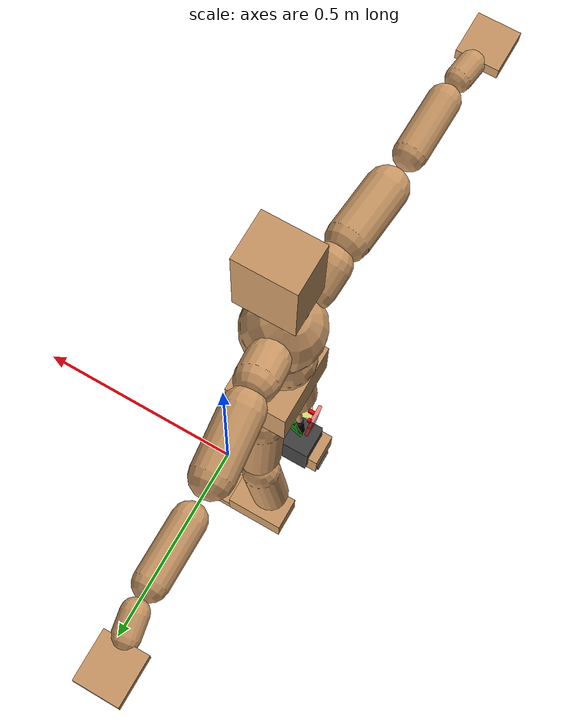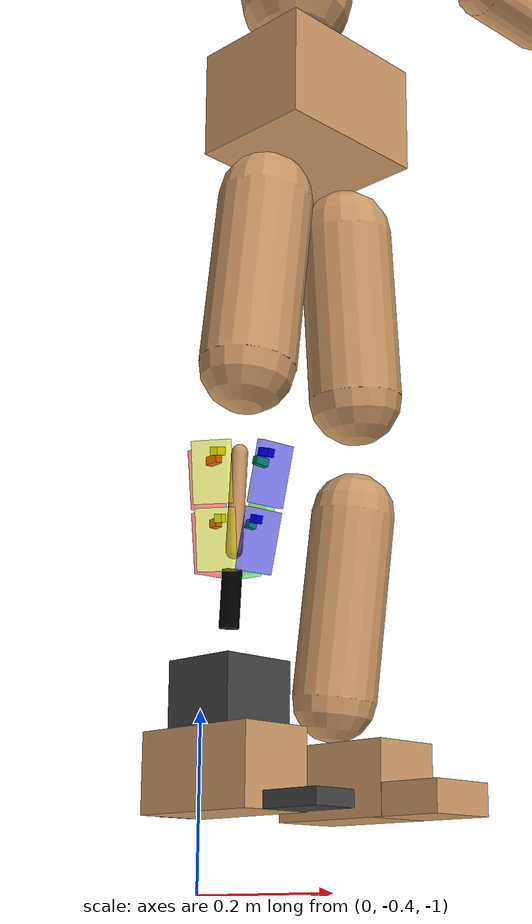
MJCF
<mujoco model="smpl_humanoid10">
  <compiler coordinate="local"/>
  <default>
    <joint damping="50.0" armature="0.01" stiffness="1000.0" limited="true"/>
    <geom conaffinity="1" condim="3" contype="7" margin="0.001" rgba="0.8 0.6 .4 1"/>

    <default class="posterior">
      <geom solref="0.0032 1" solimp="0.9 0.99 0.001 0.5 2" rgba="0 0 0 1"/>
    </default>

    <default class="medial">
      <geom solref="0.0023 1" solimp="0.9 0.99 0.001 0.5 2" rgba="0 0 0 1"/>
    </default>

    <default class="lateral">
      <geom solref="0.0020 1" solimp="0.9 0.99 0.001 0.5 2" rgba="0 0 0 1"/>
    </default>

    <default class="anterior">
      <geom solref="0.0017 1" solimp="0.9 0.99 0.001 0.5 2" rgba="0 0 0 1"/>
    </default>

    <default class="coll">
        <geom type="capsule" contype="1" conaffinity="0" condim="3" rgba="0.8 0.7 .5 1" margin="0.001" material="MatSkin"/>
    </default>

    <default class="myo_leg_touch">
      <site type="box" group="3" rgba="0.8 0.2 .2 1"/>
    </default>
  </default>

  <asset>
    <texture
      type="skybox"
      builtin="flat"
      rgb1="1 1 1"
      width="512"
      height="512"/>
    <material name="MatSkin" rgba="0.9 .7 1 1"/>
    <mesh file="../mesh/OSL/osl_ankle_v2.stl" name="osl_ankle_assembly_geom_1_osl_ankle_v2"/>
    <mesh file="../mesh/OSL/osl_custom_foot_v2.stl" name="osl_foot_assembly_geom_1_osl_custom_foot_v2"/>
  </asset>
  <worldbody>
    <light cutoff="100" diffuse="1 1 1" dir="-0 0 -1.3" directional="true" exponent="1" pos="0 0 1.3" specular=".1 .1 .1"/>
    <body name="Pelvis" pos="-0.0018 -0.2233 0.0282">
      <freejoint name="Pelvis"/>
      <geom type="box" pos="-0.0055 -0.0000 -0.0121" size="0.083 0.1069 0.0722" quat="1.0000 0.0000 0.0000 0.0000" density="1000"/>
      <body name="L_Hip" pos="-0.0068 0.0695 -0.0914">
        <joint name="L_Hip_x" type="hinge" pos="0 0 0" axis="1 0 0" stiffness="800" damping="80" armature="0.02" range="-115.0000 115.0000"/>
        <joint name="L_Hip_y" type="hinge" pos="0 0 0" axis="0 1 0" stiffness="800" damping="80" armature="0.02" range="-115.0000 115.0000"/>
        <joint name="L_Hip_z" type="hinge" pos="0 0 0" axis="0 0 1" stiffness="800" damping="80" armature="0.02" range="-115.0000 115.0000"/>
        <geom type="capsule" contype="1" conaffinity="1" density="2040.816327" fromto="-0.0009 0.0069 -0.0750 -0.0036 0.0274 -0.3002" size="0.0615"/>
        <body name="L_Knee" pos="-0.0045 0.0343 -0.3752">
          <joint name="L_Knee_x" type="hinge" pos="0 0 0" axis="1 0 0" stiffness="800" damping="80" armature="0.02" range="-0.01 0.01"/>
          <joint name="L_Knee_y" type="hinge" pos="0 0 0" axis="0 1 0" stiffness="800" damping="80" armature="0.02" range="0.0 130.0000"/>
          <joint name="L_Knee_z" type="hinge" pos="0 0 0" axis="0 0 1" stiffness="800" damping="80" armature="0.02" range="-0.01 0.01"/>
          <geom type="capsule" contype="1" conaffinity="1" density="1234.567901" fromto="-0.0087 -0.0027 -0.0796 -0.0350 -0.0109 -0.3184" size="0.0541"/>
          <body name="L_Ankle" pos="-0.0437 -0.0136 -0.398">
            <joint name="L_Ankle_x" type="hinge" pos="0 0 0" axis="1 0 0" stiffness="800" damping="80" armature="0.02" range="-60.0000 60.0000"/>
            <joint name="L_Ankle_y" type="hinge" pos="0 0 0" axis="0 1 0" stiffness="800" damping="80" armature="0.02" range="-60.0000 60.0000"/>
            <joint name="L_Ankle_z" type="hinge" pos="0 0 0" axis="0 0 1" stiffness="800" damping="80" armature="0.02" range="-60.0000 60.0000"/>
            <geom type="box" pos="0.0242 0.0233 -0.0239" size="0.085 0.0483 0.0464" quat="1.0000 0.0000 0.0000 0.0000" density="1000"/>
            <body name="L_Toe" pos="0.1193 0.0264 -0.0558">
              <joint name="L_Toe_x" type="hinge" pos="0 0 0" axis="1 0 0" stiffness="500" damping="50" armature="0.02" range="-1.0000 1.0000"/>
              <joint name="L_Toe_y" type="hinge" pos="0 0 0" axis="0 1 0" stiffness="500" damping="50" armature="0.02" range="-90.0000 90.0000"/>
              <joint name="L_Toe_z" type="hinge" pos="0 0 0" axis="0 0 1" stiffness="500" damping="50" armature="0.02" range="-1.0000 1.0000"/>
              <geom type="box" pos="0.0248 -0.0030 0.0055" size="0.0496 0.0478 0.02" quat="1.0000 0.0000 0.0000 0.0000" density="1000"/>
            </body>
          </body>
        </body>
      </body>
      <body name="R_Hip" pos="-0.0043 -0.0677 -0.0905">
        <joint name="R_Hip_x" type="hinge" pos="0 0 0" axis="1 0 0" stiffness="800" damping="80" armature="0.02" range="-115.0000 115.0000"/>
        <joint name="R_Hip_y" type="hinge" pos="0 0 0" axis="0 1 0" stiffness="800" damping="80" armature="0.02" range="-115.0000 115.0000"/>
        <joint name="R_Hip_z" type="hinge" pos="0 0 0" axis="0 0 1" stiffness="800" damping="80" armature="0.02" range="-115.0000 115.0000"/>
        <geom type="capsule" contype="1" conaffinity="1" density="2040.816327" fromto="-0.0018 -0.0077 -0.0765 -0.0071 -0.0306 -0.3061" size="0.0606"/>
        <body name="R_Knee" pos="-0.0089 -0.0383 -0.3826">
          <joint name="R_Knee_x" type="hinge" pos="0 0 0" axis="1 0 0" stiffness="800" damping="80" armature="0.02" range="-0.01 0.01"/>
          <joint name="R_Knee_y" type="hinge" pos="0 0 0" axis="0 1 0" stiffness="800" damping="80" armature="0.02" range="0.0 130.0000"/>
          <joint name="R_Knee_z" type="hinge" pos="0 0 0" axis="0 0 1" stiffness="800" damping="80" armature="0.02" range="-0.01 0.01"/>
          <geom type="capsule" contype="1" conaffinity="1" density="11336" fromto="-0.00386	0.00148	-0.03588	-0.01643	0.00615	-0.15461" size="0.01"/>

          <body name="skin_box_posterior_top" pos="-0.05002507982897726 0.0014752877792309754 -0.03584827438683026" quat="0.5259542185366413 -0.47262264017238004 0.4929276001932958 -0.5069737478091723">
              <geom class="posterior" type="box" size="0.005000 0.005000 0.008767" density="67442" rgba="1 0 0 1"/>
          </body>
          <body name="skin_box_medial_top" pos="-0.004368783333674456 0.03754833852358707 -0.03926257407023701" quat="0.13421336967846742 -0.041270130758904594 -0.6466634749023202 0.7497398868500662">
              <geom class="medial" type="box" size="0.005000 0.005000 0.008767" density="67442" rgba="0 1 0 1"/>
          </body>
          <body name="skin_box_anterior_top" pos="0.04128751316162835 0.0018548753303769148 -0.04549948978298737" quat="0.5727511163956187 -0.41467596827833214 -0.4368648205143749 0.5560118061668682">
              <geom class="anterior" type="box" size="0.005000 0.005000 0.008767" density="67442" rgba="0 0 1 1"/>
          </body>
          <body name="skin_box_lateral_top" pos="-0.004368783333674448 -0.03421817541397918 -0.04208519009958062" quat="0.7745746530175288 -0.6166989983853296 -0.046512854319300176 0.13248776047762917">
              <geom class="lateral" type="box" size="0.005000 0.005000 0.008767" density="67442" rgba="1 1 0 1"/>
          </body>
          <body name="skin_box_posterior_bottom" pos="-0.0481193801870875 0.004621445631928363 -0.11584101127988082" quat="0.5259542185366413 -0.47262264017238004 0.4929276001932958 -0.5069737478091723">
              <geom class="posterior" type="box" size="0.005000 0.005000 0.005277" density="112045" rgba="1 0 0 1"/>
          </body>
          <body name="skin_box_medial_bottom" pos="-0.012721852933263729 0.030343820171131665 -0.11857643855541734" quat="0.13421336967846742 -0.041270130758904594 -0.6466634749023202 0.7497398868500662">
              <geom class="medial" type="box" size="0.005000 0.005000 0.005277" density="112045" rgba="0 1 0 1"/>
          </body>
          <body name="skin_box_anterior_bottom" pos="0.022675674320560047 0.004915741527967215 -0.12332364097703863" quat="0.5727511163956187 -0.41467596827833214 -0.4368648205143749 0.5560118061668682">
              <geom class="anterior" type="box" size="0.005000 0.005000 0.005277" density="112045" rgba="0 0 1 1"/>
          </body>
          <body name="skin_box_lateral_bottom" pos="-0.012721852933263722 -0.020806633011236086 -0.1205882137015021" quat="0.7745746530175288 -0.6166989983853296 -0.046512854319300176 0.13248776047762917">
              <geom class="lateral" type="box" size="0.005000 0.005000 0.005277" density="112045" rgba="1 1 0 1"/>
          </body>
          <body name="prosthetic_assembly1" pos="-0.01272122  0.00476836 -0.11957632" quat="0.53483409 -0.46255    -0.48321172  0.51624261"> <!--quat="0.692209  0.719785 0.037474 -0.036767">-->
            <inertial pos="0 0 0" mass="0.001" diaginertia="0.00001 0.00001 0.00001"/>
            <joint name="suspension_slide" type="slide" axis="0 1 0" range="-0.05 0.05" stiffness="10" damping="1" springref="-0.025"/>

            <body name="prosthetic_assembly2" pos="0.0  0.0  0.0" quat="1.0 0.0 0.0 0.0">
              <inertial pos="0 0 0" mass="0.001" diaginertia="0.00001 0.00001 0.00001"/>
              <joint name="suspension_x" type="hinge" axis="1 0 0" pos="0 0.06 0" range="-10 10" stiffness="10" damping="1"/>

              <joint name="suspension_y" type="hinge" axis="0 1 0" pos="0 0.06 0" range="-10 10" stiffness="10" damping="1"/>

              <joint name="suspension_z" type="hinge" axis="0 0 1" pos="0 0.06 0" range="-20 20" stiffness="10" damping="1"/>

              <body name="osl_tibial_pylon">
                <geom type="cylinder" size="0.012 0.035" pos="-0.00345975  0.09410516 -0.00263468" quat="0.49964592 -0.49981643  0.50035573  0.5001816" rgba="0 0 0 1.0" condim="3" contype="1"/>
                <inertial pos="-0.00345975  0.09410516 -0.00263468" quat="0.49964592 -0.49981643  0.50035573  0.5001816" mass="0.0312394" diaginertia="0.00001 0.00001 0.00001"/>
              </body>

              <body name="socket_box_posterior_top" pos="-0.0 -0.05241 0.05518" quat="0.0 -0.0 0.99627 -0.08629">
                  <geom type="box" pos="0.0 0.0 0.0" size="0.025000 0.037500 0.005000" density="2833" rgba="1 0 0 0.5"/>
              </body>
              <body name="socket_box_medial_top" pos="0.04486 -0.05241 -0.0024" quat="0.79039 0.06846 -0.60649 0.05253">
                  <geom type="box" pos="0.0 0.0 0.0" size="0.025000 0.037500 0.005000" density="2833" rgba="0 1 0 0.5"/>
              </body>
              <body name="socket_box_anterior_top" pos="-0.0 -0.05241 -0.05518" quat="0.99627 0.08629 -0.0 0.0">
                  <geom type="box" pos="0.0 0.0 0.0" size="0.025000 0.037500 0.005000" density="2833" rgba="0 0 1 0.5"/>
              </body>
              <body name="socket_box_lateral_top" pos="-0.04486 -0.05241 -0.0024" quat="0.79039 0.06846 0.60649 -0.05253">
                  <geom type="box" pos="0.0 0.0 0.0" size="0.025000 0.037500 0.005000" density="2833" rgba="1 1 0 0.5"/>
              </body>
              <body name="socket_box_posterior_bottom" pos="-0.0 0.0264 0.04142" quat="0.0 -0.0 0.99627 -0.08629">
                  <geom type="box" pos="0.0 0.0 0.0" size="0.025000 0.037500 0.005000" density="2833" rgba="1 0 0 0.5"/>
              </body>
              <body name="socket_box_medial_bottom" pos="0.03122 0.0264 -0.00151" quat="0.79039 0.06846 -0.60649 0.05253">
                  <geom type="box" pos="0.0 0.0 0.0" size="0.025000 0.037500 0.005000" density="2833" rgba="0 1 0 0.5"/>
              </body>
              <body name="socket_box_anterior_bottom" pos="-0.0 0.0264 -0.04142" quat="0.99627 0.08629 -0.0 0.0">
                  <geom type="box" pos="0.0 0.0 0.0" size="0.025000 0.037500 0.005000" density="2833" rgba="0 0 1 0.5"/>
              </body>
              <body name="socket_box_lateral_bottom" pos="-0.03122 0.0264 -0.00151" quat="0.79039 0.06846 0.60649 -0.05253">
                  <geom type="box" pos="0.0 0.0 0.0" size="0.025000 0.037500 0.005000" density="2833" rgba="1 1 0 0.5"/>
              </body>

              <body name="osl_ankle_assembly" pos="-0.00628432  0.27154015 -0.01722417" quat="-0.05111733 -0.70525671  0.02335159  0.70672109">
                <inertial pos="-0.00665 0.04539 0.00924" quat="0.612323 0.440299 -0.442253 0.485396" mass="1.739" diaginertia="0.00535042 0.00492977 0.0030318"/>
                <geom name="osl_ankle_assembly_collision" type="box" pos="0.0 0.035 0.0" rgba="0.255 0.255 0.255 1" size="0.05 0.07 0.05" contype="1" conaffinity="1"/>
                <body name="R_Ankle_Motor" pos="0 0 0" quat="1.0 0.0 0.0 0.0">
                  <inertial pos="0 0 0" mass="0.05" diaginertia="0.00001 0.00001 0.00001"/>
                  <joint name="Motor" type="hinge" pos="0 0 0" axis="0 0 1" stiffness="0" damping="0" armature="0.02" range="-180.0000 180.0000"/>

                  <body name="R_Ankle_foot" pos="0.0 0.0 0.0" quat="1.0 0.0 0.0 0.0">
                    <joint name="R_Ankle_y" type="hinge" pos="0 0 0" axis="0 0 1" stiffness="3000" damping="80" armature="0.02" range="-180.0000 180.0000"/>
                    <geom type="box" pos="0.045 -0.06204 0.006" size="0.129 0.01 0.03" density="470" rgba="0.255 0.255 0.255 1"/>
                    <body name="R_Ankle"
                          pos="-0.01810 -0.00695 -0.00654"
                          quat="0.707107 -0.707107 0.000000 0.000000">
                        <geom type="box" pos="0.0256 -0.0212 -0.0174" size="0.0865 0.0483 0.0478" quat="1.0000 0.0000 0.0000 0.0000" density="1"/>
                    </body>
                  </body>
                </body>
              </body>
            </body>
          </body>
        </body>
      </body>
      <body name="Torso" pos="-0.0267 -0.0025 0.109">
        <joint name="Torso_x" type="hinge" pos="0 0 0" axis="1 0 0" stiffness="1000" damping="100" armature="0.02" range="-180.0000 180.0000"/>
        <joint name="Torso_y" type="hinge" pos="0 0 0" axis="0 1 0" stiffness="1000" damping="100" armature="0.02" range="-180.0000 180.0000"/>
        <joint name="Torso_z" type="hinge" pos="0 0 0" axis="0 0 1" stiffness="1000" damping="100" armature="0.02" range="-180.0000 180.0000"/>
        <geom type="capsule" contype="1" conaffinity="1" density="2040.816327" fromto="0.0005 0.0025 0.0608 0.0006 0.0030 0.0743" size="0.0769"/>
        <body name="Spine" pos="0.0011 0.0055 0.1352">
          <joint name="Spine_x" type="hinge" pos="0 0 0" axis="1 0 0" stiffness="1000" damping="100" armature="0.02" range="-180.0000 180.0000"/>
          <joint name="Spine_y" type="hinge" pos="0 0 0" axis="0 1 0" stiffness="1000" damping="100" armature="0.02" range="-180.0000 180.0000"/>
          <joint name="Spine_z" type="hinge" pos="0 0 0" axis="0 0 1" stiffness="1000" damping="100" armature="0.02" range="-180.0000 180.0000"/>
          <geom type="capsule" contype="1" conaffinity="1" density="2040.816327" fromto="0.0114 0.0007 0.0238 0.0140 0.0008 0.0291" size="0.0755"/>
          <body name="Chest" pos="0.0254 0.0015 0.0529">
            <joint name="Chest_x" type="hinge" pos="0 0 0" axis="1 0 0" stiffness="1000" damping="100" armature="0.02" range="-180.0000 180.0000"/>
            <joint name="Chest_y" type="hinge" pos="0 0 0" axis="0 1 0" stiffness="1000" damping="100" armature="0.02" range="-180.0000 180.0000"/>
            <joint name="Chest_z" type="hinge" pos="0 0 0" axis="0 0 1" stiffness="1000" damping="100" armature="0.02" range="-180.0000 180.0000"/>
            <geom type="capsule" contype="1" conaffinity="1" density="2040.816327" fromto="-0.0173 -0.0009 0.0682 -0.0212 -0.0010 0.0833" size="0.1002"/>
            <body name="Neck" pos="-0.0429 -0.0028 0.2139">
              <joint name="Neck_x" type="hinge" pos="0 0 0" axis="1 0 0" stiffness="500" damping="50" armature="0.02" range="-180.0000 180.0000"/>
              <joint name="Neck_y" type="hinge" pos="0 0 0" axis="0 1 0" stiffness="500" damping="50" armature="0.02" range="-180.0000 180.0000"/>
              <joint name="Neck_z" type="hinge" pos="0 0 0" axis="0 0 1" stiffness="500" damping="50" armature="0.02" range="-180.0000 180.0000"/>
              <geom type="capsule" contype="1" conaffinity="1" density="1000" fromto="0.0103 0.0010 0.0130 0.0411 0.0041 0.0520" size="0.0436"/>
              <body name="Head" pos="0.0513 0.0052 0.065">
                <joint name="Head_x" type="hinge" pos="0 0 0" axis="1 0 0" stiffness="500" damping="50" armature="0.02" range="-180.0000 180.0000"/>
                <joint name="Head_y" type="hinge" pos="0 0 0" axis="0 1 0" stiffness="500" damping="50" armature="0.02" range="-180.0000 180.0000"/>
                <joint name="Head_z" type="hinge" pos="0 0 0" axis="0 0 1" stiffness="500" damping="50" armature="0.02" range="-180.0000 180.0000"/>
                <geom type="box" pos="-0.0116 -0.0042 0.0876" size="0.076 0.0606 0.1154" quat="1.0000 0.0000 0.0000 0.0000" density="1000"/>
              </body>
            </body>
            <body name="L_Thorax" pos="-0.0341 0.0788 0.1217">
              <joint name="L_Thorax_x" type="hinge" pos="0 0 0" axis="1 0 0" stiffness="500" damping="50" armature="0.02" range="-180.0000 180.0000"/>
              <joint name="L_Thorax_y" type="hinge" pos="0 0 0" axis="0 1 0" stiffness="500" damping="50" armature="0.02" range="-180.0000 180.0000"/>
              <joint name="L_Thorax_z" type="hinge" pos="0 0 0" axis="0 0 1" stiffness="500" damping="50" armature="0.02" range="-180.0000 180.0000"/>
              <geom type="capsule" contype="1" conaffinity="1" density="1000" fromto="-0.0018 0.0182 0.0061 -0.0071 0.0728 0.0244" size="0.0521"/>
              <body name="L_Shoulder" pos="-0.0089 0.091 0.0305">
                <joint name="L_Shoulder_x" type="hinge" pos="0 0 0" axis="1 0 0" stiffness="500" damping="50" armature="0.02" range="-180.0000 180.0000"/>
                <joint name="L_Shoulder_y" type="hinge" pos="0 0 0" axis="0 1 0" stiffness="500" damping="50" armature="0.02" range="-180.0000 180.0000"/>
                <joint name="L_Shoulder_z" type="hinge" pos="0 0 0" axis="0 0 1" stiffness="500" damping="50" armature="0.02" range="-180.0000 180.0000"/>
                <geom type="capsule" contype="1" conaffinity="1" density="1000" fromto="-0.0055 0.0519 -0.0026 -0.0220 0.2077 -0.0102" size="0.0517"/>
                <body name="L_Elbow" pos="-0.0275 0.2596 -0.0128">
                  <joint name="L_Elbow_x" type="hinge" pos="0 0 0" axis="1 0 0" stiffness="500" damping="50" armature="0.02" range="-180.0000 180.0000"/>
                  <joint name="L_Elbow_y" type="hinge" pos="0 0 0" axis="0 1 0" stiffness="500" damping="50" armature="0.02" range="-180.0000 180.0000"/>
                  <joint name="L_Elbow_z" type="hinge" pos="0 0 0" axis="0 0 1" stiffness="500" damping="50" armature="0.02" range="-180.0000 180.0000"/>
                  <geom type="capsule" contype="1" conaffinity="1" density="1000" fromto="-0.0002 0.0498 0.0018 -0.0009 0.1994 0.0072" size="0.0405"/>
                  <body name="L_Wrist" pos="-0.0012 0.2492 0.009">
                    <joint name="L_Wrist_x" type="hinge" pos="0 0 0" axis="1 0 0" stiffness="300" damping="30" armature="0.02" range="-180.0000 180.0000"/>
                    <joint name="L_Wrist_y" type="hinge" pos="0 0 0" axis="0 1 0" stiffness="300" damping="30" armature="0.02" range="-180.0000 180.0000"/>
                    <joint name="L_Wrist_z" type="hinge" pos="0 0 0" axis="0 0 1" stiffness="300" damping="30" armature="0.02" range="-180.0000 180.0000"/>
                    <geom type="capsule" contype="1" conaffinity="1" density="1000" fromto="-0.0030 0.0168 -0.0016 -0.0120 0.0672 -0.0065" size="0.0318"/>
                    <body name="L_Hand" pos="-0.0149 0.084 -0.0082">
                      <joint name="L_Hand_x" type="hinge" pos="0 0 0" axis="1 0 0" stiffness="300" damping="30" armature="0.02" range="-180.0000 180.0000"/>
                      <joint name="L_Hand_y" type="hinge" pos="0 0 0" axis="0 1 0" stiffness="300" damping="30" armature="0.02" range="-180.0000 180.0000"/>
                      <joint name="L_Hand_z" type="hinge" pos="0 0 0" axis="0 0 1" stiffness="300" damping="30" armature="0.02" range="-180.0000 180.0000"/>
                      <geom type="box" pos="-0.0058 0.0493 0.0010" size="0.0538 0.0585 0.0158" quat="1.0000 0.0000 0.0000 0.0000" density="1000"/>
                    </body>
                  </body>
                </body>
              </body>
            </body>
            <body name="R_Thorax" pos="-0.0386 -0.0818 0.1188">
              <joint name="R_Thorax_x" type="hinge" pos="0 0 0" axis="1 0 0" stiffness="500" damping="50" armature="0.02" range="-180.0000 180.0000"/>
              <joint name="R_Thorax_y" type="hinge" pos="0 0 0" axis="0 1 0" stiffness="500" damping="50" armature="0.02" range="-180.0000 180.0000"/>
              <joint name="R_Thorax_z" type="hinge" pos="0 0 0" axis="0 0 1" stiffness="500" damping="50" armature="0.02" range="-180.0000 180.0000"/>
              <geom type="capsule" contype="1" conaffinity="1" density="1000" fromto="-0.0018 -0.0192 0.0065 -0.0073 -0.0768 0.0260" size="0.0511"/>
              <body name="R_Shoulder" pos="-0.0091 -0.096 0.0326">
                <joint name="R_Shoulder_x" type="hinge" pos="0 0 0" axis="1 0 0" stiffness="500" damping="50" armature="0.02" range="-180.0000 180.0000"/>
                <joint name="R_Shoulder_y" type="hinge" pos="0 0 0" axis="0 1 0" stiffness="500" damping="50" armature="0.02" range="-180.0000 180.0000"/>
                <joint name="R_Shoulder_z" type="hinge" pos="0 0 0" axis="0 0 1" stiffness="500" damping="50" armature="0.02" range="-180.0000 180.0000"/>
                <geom type="capsule" contype="1" conaffinity="1" density="1000" fromto="-0.0043 -0.0507 -0.0027 -0.0171 -0.2030 -0.0107" size="0.0531"/>
                <body name="R_Elbow" pos="-0.0214 -0.2537 -0.0133">
                  <joint name="R_Elbow_x" type="hinge" pos="0 0 0" axis="1 0 0" stiffness="500" damping="50" armature="0.02" range="-180.0000 180.0000"/>
                  <joint name="R_Elbow_y" type="hinge" pos="0 0 0" axis="0 1 0" stiffness="500" damping="50" armature="0.02" range="-180.0000 180.0000"/>
                  <joint name="R_Elbow_z" type="hinge" pos="0 0 0" axis="0 0 1" stiffness="500" damping="50" armature="0.02" range="-180.0000 180.0000"/>
                  <geom type="capsule" contype="1" conaffinity="1" density="1000" fromto="-0.0011 -0.0511 0.0016 -0.0044 -0.2042 0.0062" size="0.0408"/>
                  <body name="R_Wrist" pos="-0.0056 -0.2553 0.0078">
                    <joint name="R_Wrist_x" type="hinge" pos="0 0 0" axis="1 0 0" stiffness="300" damping="30" armature="0.02" range="-180.0000 180.0000"/>
                    <joint name="R_Wrist_y" type="hinge" pos="0 0 0" axis="0 1 0" stiffness="300" damping="30" armature="0.02" range="-180.0000 180.0000"/>
                    <joint name="R_Wrist_z" type="hinge" pos="0 0 0" axis="0 0 1" stiffness="300" damping="30" armature="0.02" range="-180.0000 180.0000"/>
                    <geom type="capsule" contype="1" conaffinity="1" density="1000" fromto="-0.0021 -0.0169 -0.0012 -0.0083 -0.0677 -0.0049" size="0.0326"/>
                    <body name="R_Hand" pos="-0.0103 -0.0846 -0.0061">
                      <joint name="R_Hand_x" type="hinge" pos="0 0 0" axis="1 0 0" stiffness="300" damping="30" armature="0.02" range="-180.0000 180.0000"/>
                      <joint name="R_Hand_y" type="hinge" pos="0 0 0" axis="0 1 0" stiffness="300" damping="30" armature="0.02" range="-180.0000 180.0000"/>
                      <joint name="R_Hand_z" type="hinge" pos="0 0 0" axis="0 0 1" stiffness="300" damping="30" armature="0.02" range="-180.0000 180.0000"/>
                      <geom type="box" pos="-0.0079 -0.0462 -0.0009" size="0.0546 0.0569 0.0164" quat="1.0000 0.0000 0.0000 0.0000" density="1000"/>
                    </body>
                  </body>
                </body>
              </body>
            </body>
          </body>
        </body>
      </body>
    </body>
  </worldbody>
  <actuator>
    <motor name="L_Hip_x" joint="L_Hip_x" gear="500" forcerange="-1000 1000"/>
    <motor name="L_Hip_y" joint="L_Hip_y" gear="500" forcerange="-1000 1000"/>
    <motor name="L_Hip_z" joint="L_Hip_z" gear="500" forcerange="-1000 1000"/>
    <motor name="L_Knee_y" joint="L_Knee_y" gear="500" forcerange="-1000 1000"/>
    <motor name="L_Ankle_x" joint="L_Ankle_x" gear="500" forcerange="-1000 1000"/>
    <motor name="L_Ankle_y" joint="L_Ankle_y" gear="500" forcerange="-1000 1000"/>
    <motor name="L_Ankle_z" joint="L_Ankle_z" gear="500" forcerange="-1000 1000"/>
    <motor name="L_Toe_x" joint="L_Toe_x" gear="500" forcerange="-1000 1000"/>
    <motor name="L_Toe_y" joint="L_Toe_y" gear="500" forcerange="-1000 1000"/>
    <motor name="L_Toe_z" joint="L_Toe_z" gear="500" forcerange="-1000 1000"/>
    <motor name="R_Hip_x" joint="R_Hip_x" gear="500" forcerange="-1000 1000"/>
    <motor name="R_Hip_y" joint="R_Hip_y" gear="500" forcerange="-1000 1000"/>
    <motor name="R_Hip_z" joint="R_Hip_z" gear="500" forcerange="-1000 1000"/>
    <motor name="R_Knee_x" joint="R_Knee_x" gear="500" forcerange="-1000 1000"/>
    <motor name="R_Knee_y" joint="R_Knee_y" gear="500" forcerange="-1000 1000"/>
    <motor name="R_Knee_z" joint="R_Knee_z" gear="500" forcerange="-1000 1000"/>
    <motor name="Torso_x" joint="Torso_x" gear="500" forcerange="-1000 1000"/>
    <motor name="Torso_y" joint="Torso_y" gear="500" forcerange="-1000 1000"/>
    <motor name="Torso_z" joint="Torso_z" gear="500" forcerange="-1000 1000"/>
    <motor name="Spine_x" joint="Spine_x" gear="500" forcerange="-1000 1000"/>
    <motor name="Spine_y" joint="Spine_y" gear="500" forcerange="-1000 1000"/>
    <motor name="Spine_z" joint="Spine_z" gear="500" forcerange="-1000 1000"/>
    <motor name="Chest_x" joint="Chest_x" gear="500" forcerange="-1000 1000"/>
    <motor name="Chest_y" joint="Chest_y" gear="500" forcerange="-1000 1000"/>
    <motor name="Chest_z" joint="Chest_z" gear="500" forcerange="-1000 1000"/>
    <motor name="Neck_x" joint="Neck_x" gear="500" forcerange="-1000 1000"/>
    <motor name="Neck_y" joint="Neck_y" gear="500" forcerange="-1000 1000"/>
    <motor name="Neck_z" joint="Neck_z" gear="500" forcerange="-1000 1000"/>
    <motor name="Head_x" joint="Head_x" gear="500" forcerange="-1000 1000"/>
    <motor name="Head_y" joint="Head_y" gear="500" forcerange="-1000 1000"/>
    <motor name="Head_z" joint="Head_z" gear="500" forcerange="-1000 1000"/>
    <motor name="L_Thorax_x" joint="L_Thorax_x" gear="500" forcerange="-1000 1000"/>
    <motor name="L_Thorax_y" joint="L_Thorax_y" gear="500" forcerange="-1000 1000"/>
    <motor name="L_Thorax_z" joint="L_Thorax_z" gear="500" forcerange="-1000 1000"/>
    <motor name="L_Shoulder_x" joint="L_Shoulder_x" gear="500" forcerange="-1000 1000"/>
    <motor name="L_Shoulder_y" joint="L_Shoulder_y" gear="500" forcerange="-1000 1000"/>
    <motor name="L_Shoulder_z" joint="L_Shoulder_z" gear="500" forcerange="-1000 1000"/>
    <motor name="L_Elbow_x" joint="L_Elbow_x" gear="500" forcerange="-1000 1000"/>
    <motor name="L_Elbow_y" joint="L_Elbow_y" gear="500" forcerange="-1000 1000"/>
    <motor name="L_Elbow_z" joint="L_Elbow_z" gear="500" forcerange="-1000 1000"/>
    <motor name="L_Wrist_x" joint="L_Wrist_x" gear="500" forcerange="-1000 1000"/>
    <motor name="L_Wrist_y" joint="L_Wrist_y" gear="500" forcerange="-1000 1000"/>
    <motor name="L_Wrist_z" joint="L_Wrist_z" gear="500" forcerange="-1000 1000"/>
    <motor name="L_Hand_x" joint="L_Hand_x" gear="500" forcerange="-1000 1000"/>
    <motor name="L_Hand_y" joint="L_Hand_y" gear="500" forcerange="-1000 1000"/>
    <motor name="L_Hand_z" joint="L_Hand_z" gear="500" forcerange="-1000 1000"/>
    <motor name="R_Thorax_x" joint="R_Thorax_x" gear="500" forcerange="-1000 1000"/>
    <motor name="R_Thorax_y" joint="R_Thorax_y" gear="500" forcerange="-1000 1000"/>
    <motor name="R_Thorax_z" joint="R_Thorax_z" gear="500" forcerange="-1000 1000"/>
    <motor name="R_Shoulder_x" joint="R_Shoulder_x" gear="500" forcerange="-1000 1000"/>
    <motor name="R_Shoulder_y" joint="R_Shoulder_y" gear="500" forcerange="-1000 1000"/>
    <motor name="R_Shoulder_z" joint="R_Shoulder_z" gear="500" forcerange="-1000 1000"/>
    <motor name="R_Elbow_x" joint="R_Elbow_x" gear="500" forcerange="-1000 1000"/>
    <motor name="R_Elbow_y" joint="R_Elbow_y" gear="500" forcerange="-1000 1000"/>
    <motor name="R_Elbow_z" joint="R_Elbow_z" gear="500" forcerange="-1000 1000"/>
    <motor name="R_Wrist_x" joint="R_Wrist_x" gear="500" forcerange="-1000 1000"/>
    <motor name="R_Wrist_y" joint="R_Wrist_y" gear="500" forcerange="-1000 1000"/>
    <motor name="R_Wrist_z" joint="R_Wrist_z" gear="500" forcerange="-1000 1000"/>
    <motor name="R_Hand_x" joint="R_Hand_x" gear="500" forcerange="-1000 1000"/>
    <motor name="R_Hand_y" joint="R_Hand_y" gear="500" forcerange="-1000 1000"/>
    <motor name="R_Hand_z" joint="R_Hand_z" gear="500" forcerange="-1000 1000"/>
  </actuator>
  <contact>
    <exclude body1="Torso" body2="Chest"/>
    <exclude body1="Head" body2="Chest"/>
    <exclude body1="R_Knee" body2="L_Ankle"/>
    <exclude body1="R_Knee" body2="L_Toe"/>
    <exclude body1="L_Knee" body2="L_Toe"/>
    <exclude body1="L_Shoulder" body2="Chest"/>
    <exclude body1="R_Shoulder" body2="Chest"/>
  </contact>
  <sensor/>
  <size njmax="700" nconmax="700"/>
</mujoco>
